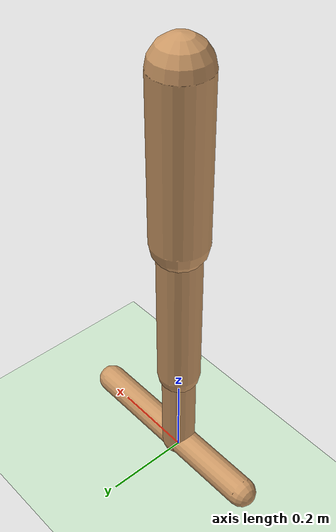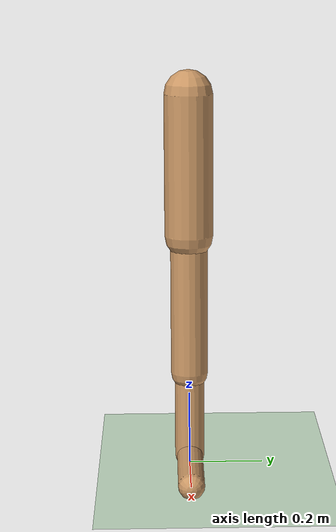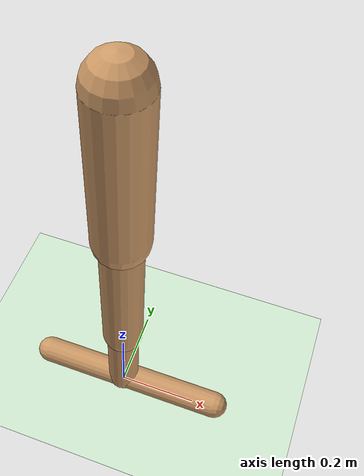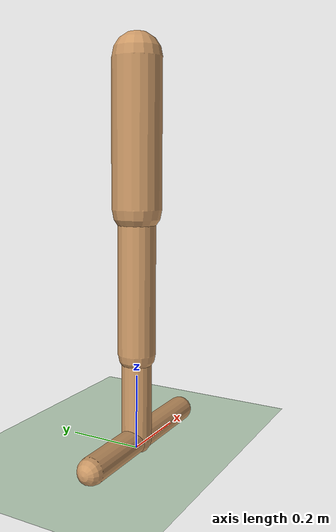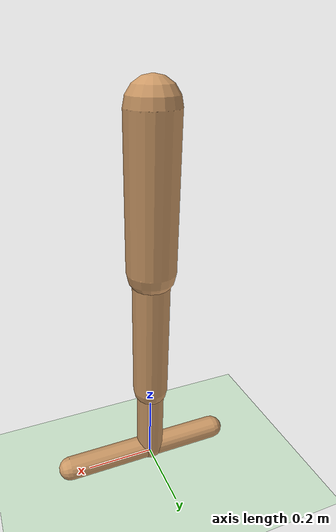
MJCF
<mujoco model="hopper">
  <compiler angle="degree" inertiafromgeom="true"/>
  <default>
    <joint armature="1" damping="1" limited="true"/>
    <geom conaffinity="1" condim="1" contype="1" margin="0.001" material="geom" rgba="0.8 0.6 .4 1" solimp=".8 .8 .01" solref=".02 1"/>
    <motor ctrllimited="true" ctrlrange="-.4 .4"/>
  </default>
  <option integrator="RK4" timestep="0.002"/>
  <visual>
    <map znear="0.02"/>
  </visual>
  <worldbody>
    <light cutoff="100" diffuse="1 1 1" dir="-0 0 -1.3" directional="true" exponent="1" pos="0 0 1.3" specular=".1 .1 .1"/>
    <geom conaffinity="1" condim="3" name="floor" pos="0 0 0" rgba="0.8 0.9 0.8 1" size="20 20 .125" type="plane" material="MatPlane"/>
    <body name="torso" pos="0 0 1.02">
      <camera name="track" mode="trackcom" pos="0 -3 -0.25" xyaxes="1 0 0 0 0 1"/>
      <joint armature="0" axis="1 0 0" damping="0" limited="false" name="ignore1" pos="0 0 0" stiffness="0" type="slide"/>
      <joint armature="0" axis="0 0 1" damping="0" limited="false" name="ignore2" pos="0 0 0" ref="1.25" stiffness="0" type="slide"/>
      <joint armature="0" axis="0 1 0" damping="0" limited="false" name="ignore3" pos="0 0 0" stiffness="0" type="hinge"/>
      <geom fromto="0 0 0 0 0 -0.38" name="torso_geom" size="0.065" type="capsule" friction="0.9"/>
      <body name="thigh" pos="0 0 -0.38">
        <joint axis="0 -1 0" name="thigh_joint" pos="0 0 0" range="-150 0" type="hinge"/>
        <geom fromto="0 0 0 0 0 -0.38" name="thigh_geom" size="0.05" type="capsule" friction="0.9"/>
        <body name="leg" pos="0 0 -0.38">
          <joint axis="0 -1 0" name="leg_joint" pos="0 0 0" range="-150 0" type="hinge"/>
          <geom fromto="0 0 0 0 0 -0.23500000000000001" name="leg_geom" size="0.04" type="capsule" friction="0.9"/>
          <body name="foot" pos="0 0 -0.23500000000000001">
            <joint axis="0 -1 0" name="foot_joint" pos="0 0 0" range="-45 45" type="hinge"/>
            <geom fromto="0.26 0 0 -0.22 0 0" name="foot_geom" size="0.035" type="capsule" friction="2.0"/>
          </body>
        </body>
      </body>
    </body>
  </worldbody>
  <actuator>
    <motor ctrllimited="true" ctrlrange="-1.0 1.0" gear="200.0" joint="thigh_joint"/>
    <motor ctrllimited="true" ctrlrange="-1.0 1.0" gear="200.0" joint="leg_joint"/>
    <motor ctrllimited="true" ctrlrange="-1.0 1.0" gear="200.0" joint="foot_joint"/>
  </actuator>
    <asset>
        <texture type="skybox" builtin="gradient" rgb1=".4 .5 .6" rgb2="0 0 0"
            width="100" height="100"/>
        <texture builtin="flat" height="1278" mark="cross" markrgb="1 1 1" name="texgeom" random="0.01" rgb1="0.8 0.6 0.4" rgb2="0.8 0.6 0.4" type="cube" width="127"/>
        <texture builtin="checker" height="100" name="texplane" rgb1="0 0 0" rgb2="0.8 0.8 0.8" type="2d" width="100"/>
        <material name="MatPlane" reflectance="0.5" shininess="1" specular="1" texrepeat="60 60" texture="texplane"/>
        <material name="geom" texture="texgeom" texuniform="true"/>
    </asset>
</mujoco>
